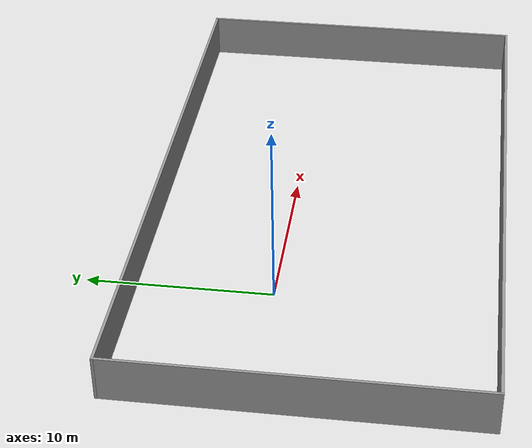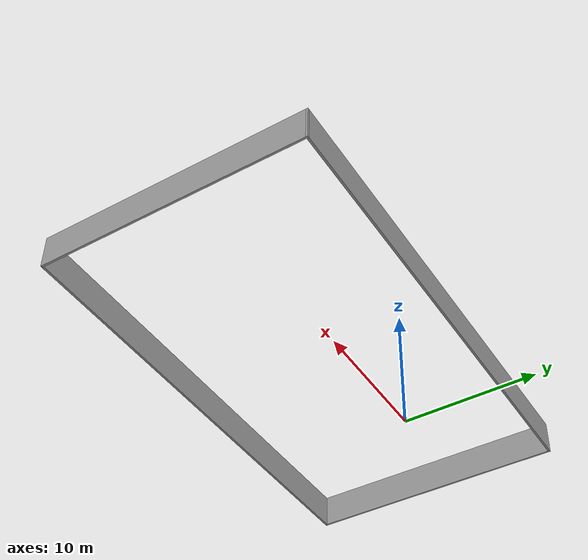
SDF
<?xml version='1.0'?>
<sdf version='1.6'>
  <model name='scene'>
    <pose frame=''>8.26479 -2.21262 0 0 -0 0</pose>
    <link name='Wall_10'>
      <collision name='Wall_10_Collision'>
        <geometry>
          <box>
            <size>19.25 0.15 2.5</size>
          </box>
        </geometry>
        <pose frame=''>0 0 1.25 0 -0 0</pose>
      </collision>
      <visual name='Wall_10_Visual'>
        <pose frame=''>0 0 1.25 0 -0 0</pose>
        <geometry>
          <box>
            <size>19.25 0.15 2.5</size>
          </box>
        </geometry>
        <material>
          <script>
            <uri>file://media/materials/scripts/gazebo.material</uri>
            <name>Gazebo/Grey</name>
          </script>
          <ambient>1 1 1 1</ambient>
        </material>
        <meta>
          <layer>0</layer>
        </meta>
      </visual>
      <pose frame=''>16.925 -0 0 0 -0 1.5708</pose>
    </link>
    <link name='Wall_11'>
      <collision name='Wall_11_Collision'>
        <geometry>
          <box>
            <size>34 0.15 2.5</size>
          </box>
        </geometry>
        <pose frame=''>0 0 1.25 0 -0 0</pose>
      </collision>
      <visual name='Wall_11_Visual'>
        <pose frame=''>0 0 1.25 0 -0 0</pose>
        <geometry>
          <box>
            <size>34 0.15 2.5</size>
          </box>
        </geometry>
        <material>
          <script>
            <uri>file://media/materials/scripts/gazebo.material</uri>
            <name>Gazebo/Grey</name>
          </script>
          <ambient>1 1 1 1</ambient>
        </material>
        <meta>
          <layer>0</layer>
        </meta>
      </visual>
      <pose frame=''>-0 9.55 0 0 -0 3.14159</pose>
    </link>
    <link name='Wall_8'>
      <collision name='Wall_8_Collision'>
        <geometry>
          <box>
            <size>19.25 0.15 2.5</size>
          </box>
        </geometry>
        <pose frame=''>0 0 1.25 0 -0 0</pose>
      </collision>
      <visual name='Wall_8_Visual'>
        <pose frame=''>0 0 1.25 0 -0 0</pose>
        <geometry>
          <box>
            <size>19.25 0.15 2.5</size>
          </box>
        </geometry>
        <material>
          <script>
            <uri>file://media/materials/scripts/gazebo.material</uri>
            <name>Gazebo/Grey</name>
          </script>
          <ambient>1 1 1 1</ambient>
        </material>
        <meta>
          <layer>0</layer>
        </meta>
      </visual>
      <pose frame=''>-16.925 -0 0 0 -0 -1.5708</pose>
    </link>
    <link name='Wall_9'>
      <collision name='Wall_9_Collision'>
        <geometry>
          <box>
            <size>34 0.15 2.5</size>
          </box>
        </geometry>
        <pose frame=''>0 0 1.25 0 -0 0</pose>
      </collision>
      <visual name='Wall_9_Visual'>
        <pose frame=''>0 0 1.25 0 -0 0</pose>
        <geometry>
          <box>
            <size>34 0.15 2.5</size>
          </box>
        </geometry>
        <material>
          <script>
            <uri>file://media/materials/scripts/gazebo.material</uri>
            <name>Gazebo/Grey</name>
          </script>
          <ambient>1 1 1 1</ambient>
        </material>
        <meta>
          <layer>0</layer>
        </meta>
      </visual>
      <pose frame=''>-0 -9.55 0 0 -0 0</pose>
    </link>
    <static>1</static>
  </model>
</sdf>
